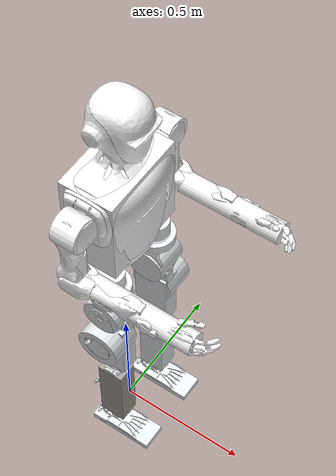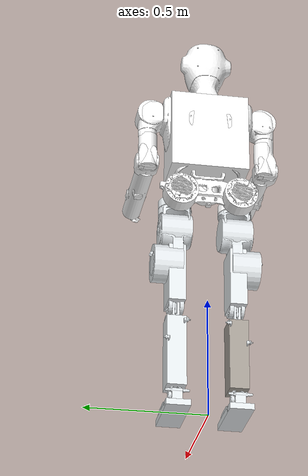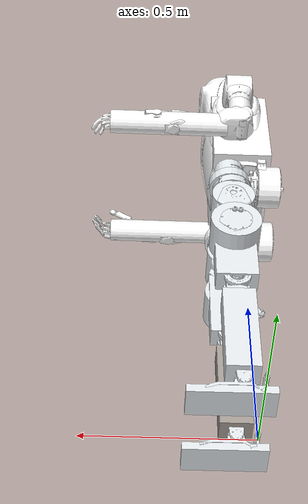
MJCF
<mujoco model="humanoid_12dof">
  <compiler angle="radian" meshdir="../meshes"/>
    <option timestep="0.001"  tolerance="1e-10" solver="Newton" jacobian="dense" cone="pyramidal" gravity="0 0 -9.81">  <!--integrator="RK4"  iteration="50"-->
        <flag contact="enable" energy="enable"/>
    </option>
    <size njmax="500" nconmax="1000" />
    <default>
        <light castshadow="false" />
        <geom rgba="0.784 0.784 0.784 1"/>
    <default class="visual">
      <geom contype="0" conaffinity="0" group="1" type="mesh"/>
    </default>
    <default class="collision">
      <geom contype="1" conaffinity="1" friction="1.0 0.3 0.3" margin="0.001" group="0"/>
    </default>
        <joint damping="0.1" frictionloss="2" armature="0.01"/>
    </default>

  <asset>
    <mesh name="base_link"          file="base_link.STL"/>
    <mesh name="Link_hip_r_roll"    file="Hip_R_Roll_Link.STL"/>
    <mesh name="Link_hip_r_yaw"     file="Hip_R_Yaw_Link.STL"/>
    <mesh name="Link_hip_r_pitch"   file="Hip_R_Pitch_Link.STL"/>
    <mesh name="Link_knee_r_pitch"  file="Knee_R_Pitch_Link.STL"/>
    <mesh name="Link_ankle_r_pitch" file="Ankle_R_Pitch_Link.STL"/>
    <mesh name="Link_ankle_r_roll"  file="Ankle_R_Roll_Link.STL"/>
    <mesh name="Link_hip_l_roll"    file="Hip_L_Roll_Link.STL"/>
    <mesh name="Link_hip_l_yaw"     file="Hip_L_Yaw_Link.STL"/>
    <mesh name="Link_hip_l_pitch"   file="Hip_L_Pitch_Link.STL"/>
    <mesh name="Link_knee_l_pitch"  file="Knee_L_Pitch_Link.STL"/>
    <mesh name="Link_ankle_l_pitch" file="Ankle_L_Pitch_Link.STL"/>
    <mesh name="Link_ankle_l_roll"  file="Ankle_L_Roll_Link.STL"/>
  </asset>
  <worldbody>
    <body name="base_link" pos="0 0 1.05" euler ="0 0 0">
      <freejoint name="float_base" />
      <inertial pos="0.027128 0.000293 0.10205" quat="1 0 0 0" mass="28" diaginertia="1.4945 1.222 1.0953"/>
      <geom class="visual" mesh="base_link" type="mesh" rgba="1 1 1 1"/>
      <geom class="collision" size="0.1 0.165 0.175" pos="0 0 0.2" type="box" rgba="1 1 1 1"/>
      <geom class="collision" size="0.06 0.045" pos="0.01 0.24 0.3" quat="0.707388 0 0.706825 0" type="cylinder" rgba="1 1 1 1"/>
      <geom class="collision" size="0.04 0.075" pos="0.01 0.25 0.13" type="cylinder" rgba="1 1 1 1"/>
      <geom class="collision" size="0.04 0.2" pos="0.26 0.25 0.08" quat="0.707388 0 0.706825 0" type="cylinder" rgba="1 1 1 1"/>
      <geom class="collision" size="0.06 0.045" pos="0.01 -0.24 0.3" quat="0.707388 0 0.706825 0" type="cylinder" rgba="1 1 1 1"/>
      <geom class="collision" size="0.04 0.075" pos="0.01 -0.25 0.13" type="cylinder" rgba="1 1 1 1"/>
      <geom class="collision" size="0.04 0.2" pos="0.26 -0.25 0.08" quat="0.707388 0 0.706825 0" type="cylinder" rgba="1 1 1 1"/>
      <geom class="collision" size="0.07 0.036" pos="-0.08 -0.125 -0.1" quat="0.707388 0 0.706825 0" type="cylinder" rgba="1 1 1 1"/>
      <geom class="collision" size="0.07 0.036" pos="-0.08 0.125 -0.1" quat="0.707388 0 0.706825 0" type="cylinder" rgba="1 1 1 1"/>
      <geom class="collision" size="0.05 0.035" pos="0 0 -0.05" type="cylinder" rgba="1 1 1 1"/>

      <body name="Hip_L_Roll_Link" pos="-0.042 0.1275 -0.097">
        <inertial pos="0.078109 0 0.024666" quat="0.0034095 0.814051 0.00396144 0.580769" mass="2.28" diaginertia="0.00399817 0.00375397 0.00244785"/>
        <joint name="Hip_L_Roll_Joint" pos="0 0 0" axis="1 0 0" range="-0.227 0.523" actuatorfrcrange="-200 200"/>
        <geom class="visual" mesh="Link_hip_l_roll" type="mesh" rgba="0.89804 0.91765 0.92941 1"/>
        <geom class="collision" size="0.07 0.0175" pos="0.09 0 -0.006" type="cylinder" rgba="0.89804 0.91765 0.92941 1"/>
        <geom class="collision" size="0.05 0.03" pos="0.09 0 0.05" type="cylinder" rgba="0.89804 0.91765 0.92941 1"/>

        <body name="Hip_L_Yaw_Link" pos="0.087 0 -0.0135">
          <inertial pos="0.000217 -0.004903 -0.085363" quat="0.999908 0.000719646 -0.0125494 0.00504253" mass="3.738" diaginertia="0.0088458 0.00823495 0.00450026"/>
          <joint name="Hip_L_Yaw_Joint" pos="0 0 0" axis="0 0 1" range="-0.5 0.65" actuatorfrcrange="-200 200"/>
          <geom class="visual" mesh="Link_hip_l_yaw" type="mesh" rgba="0.89804 0.91765 0.92941 1"/>
          <geom class="collision" size="0.07 0.065" pos="0 0 -0.11" quat="0.707388 0.706825 0 0" type="cylinder" rgba="0.89804 0.91765 0.92941 1"/>

          <body name="Hip_L_Pitch_Link" pos="0 0 -0.10595">
            <inertial pos="-7.7e-05 0.02564 -0.167614" quat="0.99923 0.0391185 -0.00304178 0.000485083" mass="6.22" diaginertia="0.0567306 0.0534788 0.0124466"/>
            <joint name="Hip_L_Pitch_Joint" pos="0 0 0" axis="0 1 0" range="-0.78 0.78" actuatorfrcrange="-200 200"/>
            <geom class="visual" mesh="Link_hip_l_pitch" type="mesh" rgba="0.89804 0.91765 0.92941 1"/>
            <geom class="collision" size="0.08 0.06" pos="0 0.035 -0.16" quat="0.707388 0.706825 0 0" type="cylinder" rgba="0.89804 0.91765 0.92941 1"/>
            <geom class="collision" size="0.065 0.035 0.125" pos="0 0 -0.22" type="box" rgba="0.89804 0.91765 0.92941 1"/>

            <body name="Knee_L_Pitch_Link" pos="0 0 -0.34">
              <inertial pos="-0.002029 -8.4e-05 -0.156302" quat="0.708888 -0.00197532 0.00439659 0.705305" mass="3.32" diaginertia="0.0301493 0.0297803 0.00193338"/>
              <joint name="Knee_L_Pitch_Joint" pos="0 0 0" axis="0 1 0" range="0 1.2" actuatorfrcrange="-200 200"/>
              <geom class="visual" mesh="Link_knee_l_pitch" type="mesh" rgba="0.89804 0.91765 0.92941 1"/>
              <geom class="collision" size="0.05 0.04 0.15" pos="0 0 -0.22" type="box" rgba="0.89804 0.91765 0.92941 1"/>

              <body name="Ankle_L_Pitch_Link" pos="0 0 -0.4">
                <inertial pos="0 0 0" quat="0.5 0.5 -0.5 0.5" mass="0.088" diaginertia="1.4e-05 8e-06 8e-06"/>
                <joint name="Ankle_L_Pitch_Joint" pos="0 0 0" axis="0 1 0" range="-0.78 0.57" actuatorfrcrange="-200 200"/>
                <geom class="visual" mesh="Link_ankle_l_pitch" type="mesh" rgba="0.89804 0.91765 0.92941 1"/>

                <body name="Ankle_L_Roll_Link">
                  <inertial pos="0.006111 0 -0.039985" quat="0 0.749246 0 0.662292" mass="0.758" diaginertia="0.00396797 0.003773 0.000717025"/>
                  <joint name="Ankle_L_Roll_Joint" pos="0 0 0" axis="1 0 0" range="-0.35 0.35" actuatorfrcrange="-200 200"/>
                  <geom class="visual" mesh="Link_ankle_l_roll" type="mesh" rgba="0.89804 0.91765 0.92941 1"/>
                  <geom class="collision" condim="4" friction="1 1 1" size="0.125 0.05 0.0125" pos="0.037 0 -0.06" type="box" rgba="0.89804 0.91765 0.92941 1"/>
                  <site name="lf-tc" type="box" size="0.125 0.05 0.0125"  pos="0.037 0 -0.06"  rgba="0 1 0 0" />
                </body>
              </body>
            </body>
          </body>
        </body>
      </body>

      <body name="Hip_R_Roll_Link" pos="-0.042 -0.1275 -0.097">
        <inertial pos="0.078109 0 0.024666" quat="0.0034095 0.814051 0.00396144 0.580769" mass="2.28" diaginertia="0.00399817 0.00375397 0.00244785"/>
        <joint name="Hip_R_Roll_Joint" pos="0 0 0" axis="1 0 0" range="-0.52 0.23" actuatorfrcrange="-200 200"/>
        <geom class="visual" mesh="Link_hip_r_roll" type="mesh" rgba="1 1 1 1"/>
        <geom class="collision" size="0.07 0.0175" pos="0.09 0 -0.006" type="cylinder" rgba="1 1 1 1"/>
        <geom class="collision" size="0.05 0.03" pos="0.09 0 0.05" type="cylinder" rgba="1 1 1 1"/>

        <body name="Hip_R_Yaw_Link" pos="0.087 0 -0.0135">
          <inertial pos="0.000217 0.004903 -0.085363" quat="0.999908 -0.000719646 -0.0125494 -0.00504253" mass="4.801" diaginertia="0.0088458 0.00823495 0.00450026"/>
          <joint name="Hip_R_Yaw_Joint" pos="0 0 0" axis="0 0 1" range="-0.65 0.5" actuatorfrcrange="-200 200"/>
          <geom class="visual" mesh="Link_hip_r_yaw" type="mesh" rgba="0.89804 0.91765 0.92941 1"/>
          <geom class="collision" size="0.07 0.065" pos="0 0 -0.11" quat="0.707388 0.706825 0 0" type="cylinder" rgba="0.89804 0.91765 0.92941 1"/>

          <body name="Hip_R_Pitch_Link" pos="0 0 -0.10595">
            <inertial pos="-7e-06 -0.02564 -0.167614" quat="0.99923 -0.0391185 -0.00304178 -0.000485083" mass="6.22" diaginertia="0.0567306 0.0534788 0.0124466"/>
            <joint name="Hip_R_Pitch_Joint" pos="0 0 0" axis="0 1 0" range="-0.78 0.78" actuatorfrcrange="-200 200"/>
            <geom class="visual" mesh="Link_hip_r_pitch" type="mesh" rgba="0.89804 0.91765 0.92941 1"/>
            <geom class="collision" size="0.08 0.06" pos="0 -0.035 -0.16" quat="0.707388 0.706825 0 0" type="cylinder" rgba="0.89804 0.91765 0.92941 1"/>
            <geom class="collision" size="0.065 0.035 0.125" pos="0 0 -0.22" type="box" rgba="0.89804 0.91765 0.92941 1"/>

            <body name="Knee_R_Pitch_Link" pos="0 0 -0.34">
              <inertial pos="-0.002029 8.4e-05 -0.156302" quat="0.706974 0.00196317 -0.00440215 0.707223" mass="3.32" diaginertia="0.0301493 0.0297803 0.00193338"/>
              <joint name="Knee_R_Pitch_Joint" pos="0 0 0" axis="0 1 0" range="0 1.2" actuatorfrcrange="-200 200"/>
              <geom class="visual" mesh="Link_knee_r_pitch" type="mesh" rgba="0.89804 0.91765 0.92941 1"/>
              <geom class="collision" size="0.05 0.04 0.15" pos="0 0 -0.22" type="box" rgba="0.64706 0.61961 0.58824 1"/>

              <body name="Ankle_R_Pitch_Link" pos="0 0 -0.4">
                <inertial pos="0 0 0" mass="0.088" diaginertia="8e-06 8e-06 1.4e-06"/>
                <joint name="Ankle_R_Pitch_Joint" pos="0 0 0" axis="0 1 0" range="-0.78 0.57" actuatorfrcrange="-200 200"/>
                <geom class="visual" mesh="Link_ankle_r_pitch" type="mesh" rgba="0.89804 0.91765 0.92941 1"/>

                <body name="Ankle_R_Roll_Link">
                  <inertial pos="0.006111 0 -0.039985" quat="0 0.749246 0 0.662292" mass="0.758" diaginertia="0.00396797 0.003773 0.000717025"/>
                  <joint name="Ankle_R_Roll_Joint" pos="0 0 0" axis="1 0 0" range="-0.35 0.35" actuatorfrcrange="-200 200"/>
                  <geom class="visual" mesh="Link_ankle_r_roll" type="mesh" rgba="0.89804 0.91765 0.92941 1"/>
                  <geom class="collision" condim="4" friction="1 1 1" size="0.125 0.05 0.0125" pos="0.037 0 -0.06" type="box" rgba="0.89804 0.91765 0.92941 1"/>
                  <site name="rf-tc" type="box" size="0.125 0.05 0.0125"  pos="0.037 0 -0.06"  rgba="0 1 0 0" />
                </body>
              </body>
            </body>
          </body>
        </body>
      </body>
      <body name="site" pos="0 0.133 0.03605">
        <site name="imu" pos="0 0 0"/>
      </body>
    </body>
  </worldbody>

  <sensor>
    <framequat name="baselink-quat" objtype="site" objname="imu" />
    <velocimeter name="baselink-velocity" site="imu" />
    <gyro name="baselink-gyro" site="imu" />
    <accelerometer name="baselink-baseAcc" site="imu" />
    <touch name="lf-touch" site="lf-tc" />
    <touch name="rf-touch" site="rf-tc" />
  </sensor>

</mujoco>
